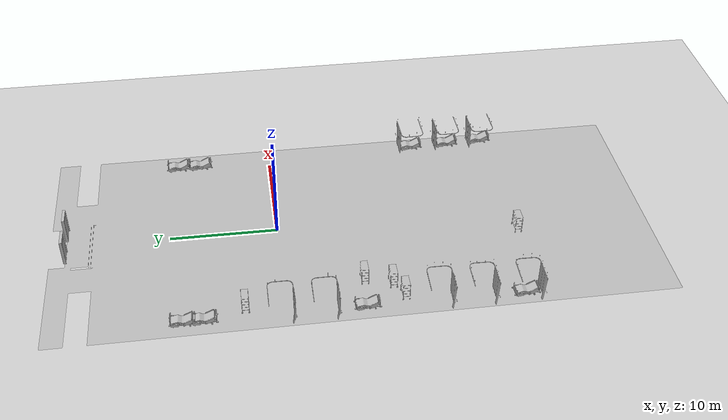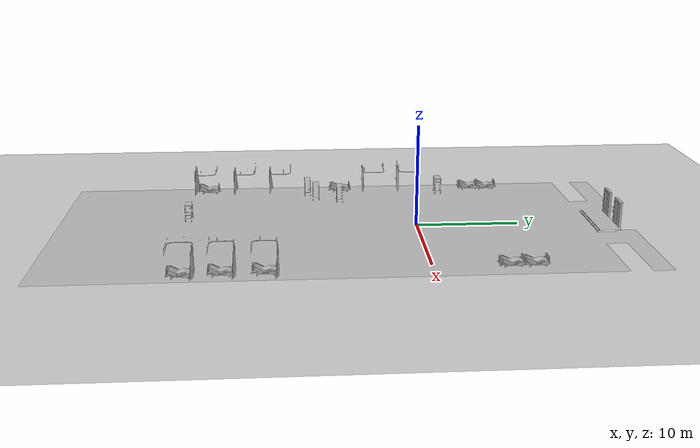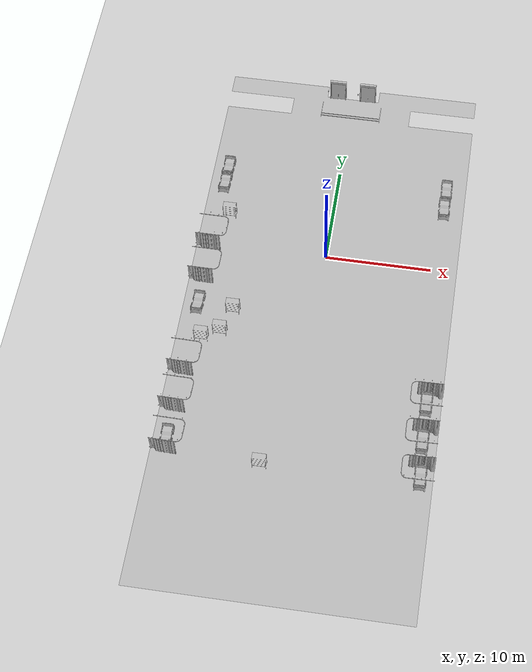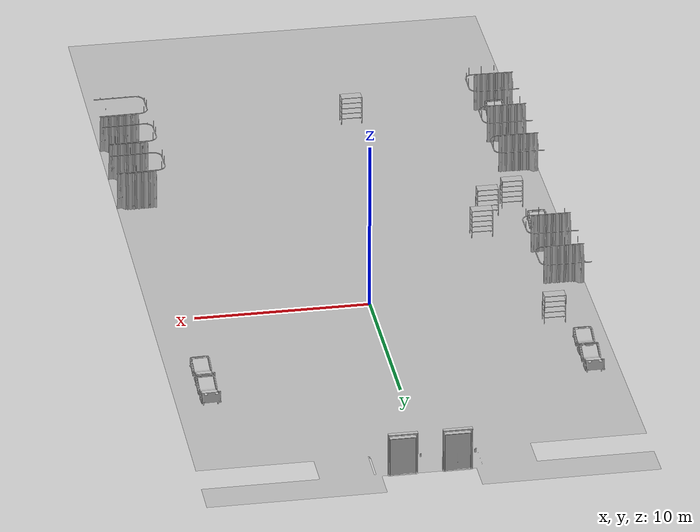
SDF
<sdf version="1.7">
 <world name="world">
  <gravity>0 0 -9.8</gravity>
  <physics name="default_physics" default="0" type="ode">
   <max_step_size>0.002</max_step_size>
   <real_time_factor>1</real_time_factor>
   <real_time_update_rate>500</real_time_update_rate>
  </physics>
  <scene><ambient>0.6 0.6 0.6 1</ambient><background>0.4 0.4 0.4 1</background><shadows>0</shadows></scene>
  <light name="sun" type="directional">
   <pose>0 0 10 0 -0 0</pose>
   <diffuse>0.8 0.8 0.8 1</diffuse>
   <specular>0.2 0.2 0.2 1</specular>
   <attenuation>
    <range>1000</range>
    <constant>0.9</constant>
    <linear>0.01</linear>
    <quadratic>0.001</quadratic>
   </attenuation>
   <direction>-0.5 0.1 -0.9</direction>
   <spot><inner_angle>0</inner_angle><outer_angle>0</outer_angle><falloff>0</falloff></spot>
  </light>
  <model name="ground_plane">
   <static>1</static>
   <link name="link">
    <collision name="collision">
     <geometry><plane><normal>0 0 1</normal><size>100 100</size></plane></geometry>
     <surface><friction><ode><mu>100</mu><mu2>50</mu2></ode></friction></surface>
    </collision>
    <visual name="visual">
     <cast_shadows>0</cast_shadows>
     <geometry><plane><normal>0 0 1</normal><size>100 100</size></plane></geometry>
     <material>
      <script><uri>file://media/materials/scripts/gazebo.material</uri><name>Gazebo/Grey</name></script>
     </material>
    </visual>
   </link>
   <pose>0 0 -0.1 0 -0 0</pose>
  </model>
  <model name="aws_robomaker_hospital_floor_01_floor_1">
   <frame name="aws_robomaker_hospital_floor_01_floor::__model__" attached_to="aws_robomaker_hospital_floor_01_floor::link">
    <pose relative_to="__model__">-0.001425 -0.014447 0 0 -0 0</pose>
   </frame>
   <link name="aws_robomaker_hospital_floor_01_floor::link">
    <visual name="visual">
     <geometry>
      <mesh>
       <uri>model://aws_robomaker_hospital_floor_01_floor/meshes/aws_robomaker_hospital_floor_01_floor_visual.dae</uri>
      </mesh>
     </geometry>
    </visual>
    <collision name="collision">
     <geometry>
      <mesh>
       <uri>model://aws_robomaker_hospital_floor_01_floor/meshes/aws_robomaker_hospital_floor_01_floor_collision.dae</uri>
      </mesh>
     </geometry>
     <surface><friction><ode><mu>100</mu><mu2>50</mu2></ode></friction></surface>
    </collision>
    <pose relative_to="aws_robomaker_hospital_floor_01_floor::__model__">0 0 0 0 -0 0</pose>
   </link>
   <static>1</static>
  </model>
  <model name="aws_robomaker_hospital_elevator_01_portal_1">
   <frame name="aws_robomaker_hospital_elevator_01_portal::__model__" attached_to="aws_robomaker_hospital_elevator_01_portal::link">
    <pose relative_to="__model__">-1.50654 19.4813 0.19 0 -0 0</pose>
   </frame>
   <link name="aws_robomaker_hospital_elevator_01_portal::link">
    <visual name="visual">
     <geometry>
      <mesh>
       <uri>model://aws_robomaker_hospital_elevator_01_portal/meshes/aws_robomaker_hospital_elevator_01_portal_visual.dae</uri>
      </mesh>
     </geometry>
    </visual>
    <collision name="collision">
     <geometry>
      <mesh>
       <uri>model://aws_robomaker_hospital_elevator_01_portal/meshes/aws_robomaker_hospital_elevator_01_portal_collision.dae</uri>
      </mesh>
     </geometry>
    </collision>
    <pose relative_to="aws_robomaker_hospital_elevator_01_portal::__model__">0 0 0 0 -0 0</pose>
   </link>
   <static>1</static>
  </model>
  <model name="aws_robomaker_hospital_elevator_01_portal_2">
   <frame name="aws_robomaker_hospital_elevator_01_portal::__model__" attached_to="aws_robomaker_hospital_elevator_01_portal::link">
    <pose relative_to="__model__">1.51134 19.487 0.19 0 -0 0</pose>
   </frame>
   <link name="aws_robomaker_hospital_elevator_01_portal::link">
    <visual name="visual">
     <geometry>
      <mesh>
       <uri>model://aws_robomaker_hospital_elevator_01_portal/meshes/aws_robomaker_hospital_elevator_01_portal_visual.dae</uri>
      </mesh>
     </geometry>
    </visual>
    <collision name="collision">
     <geometry>
      <mesh>
       <uri>model://aws_robomaker_hospital_elevator_01_portal/meshes/aws_robomaker_hospital_elevator_01_portal_collision.dae</uri>
      </mesh>
     </geometry>
    </collision>
    <pose relative_to="aws_robomaker_hospital_elevator_01_portal::__model__">0 0 0 0 -0 0</pose>
   </link>
   <static>1</static>
  </model>
  <model name="aws_robomaker_hospital_elevator_01_door_1">
   <frame name="aws_robomaker_hospital_elevator_01_door::__model__" attached_to="aws_robomaker_hospital_elevator_01_door::link">
    <pose relative_to="__model__">-1.51 19.35 0.19 0 -0 0</pose>
   </frame>
   <link name="aws_robomaker_hospital_elevator_01_door::link">
    <visual name="visual">
     <geometry>
      <mesh>
       <uri>model://aws_robomaker_hospital_elevator_01_door/meshes/aws_robomaker_hospital_elevator_01_door_visual.dae</uri>
      </mesh>
     </geometry>
    </visual>
    <collision name="collision">
     <geometry>
      <mesh>
       <uri>model://aws_robomaker_hospital_elevator_01_door/meshes/aws_robomaker_hospital_elevator_01_door_collision.dae</uri>
      </mesh>
     </geometry>
    </collision>
    <pose relative_to="aws_robomaker_hospital_elevator_01_door::__model__">0 0 0 0 -0 0</pose>
   </link>
   <static>1</static>
  </model>
  <model name="aws_robomaker_hospital_elevator_01_door_2">
   <frame name="aws_robomaker_hospital_elevator_01_door::__model__" attached_to="aws_robomaker_hospital_elevator_01_door::link">
    <pose relative_to="__model__">1.52843 19.3627 0.19 0 -0 0</pose>
   </frame>
   <link name="aws_robomaker_hospital_elevator_01_door::link">
    <visual name="visual">
     <geometry>
      <mesh>
       <uri>model://aws_robomaker_hospital_elevator_01_door/meshes/aws_robomaker_hospital_elevator_01_door_visual.dae</uri>
      </mesh>
     </geometry>
    </visual>
    <collision name="collision">
     <geometry>
      <mesh>
       <uri>model://aws_robomaker_hospital_elevator_01_door/meshes/aws_robomaker_hospital_elevator_01_door_collision.dae</uri>
      </mesh>
     </geometry>
    </collision>
    <pose relative_to="aws_robomaker_hospital_elevator_01_door::__model__">0 0 0 0 -0 0</pose>
   </link>
   <static>1</static>
  </model>
  <model name="aws_robomaker_hospital_curtain_half_open_01_1">
   <frame name="aws_robomaker_hospital_curtain_half_open_01::__model__" attached_to="aws_robomaker_hospital_curtain_half_open_01::link">
    <pose relative_to="__model__">-11.0216 -13.8069 0 0 -0 1.55358</pose>
   </frame>
   <link name="aws_robomaker_hospital_curtain_half_open_01::link">
    <visual name="visual">
     <geometry>
      <mesh>
       <uri>model://aws_robomaker_hospital_curtain_half_open_01/meshes/aws_robomaker_hospital_curtain_half_open_01_visual.dae</uri>
      </mesh>
     </geometry>
    </visual>
    <collision name="collision">
     <geometry>
      <mesh>
       <uri>model://aws_robomaker_hospital_curtain_half_open_01/meshes/aws_robomaker_hospital_curtain_half_open_01_collision.dae</uri>
      </mesh>
     </geometry>
    </collision>
    <pose relative_to="aws_robomaker_hospital_curtain_half_open_01::__model__">0 0 0 0 -0 0</pose>
   </link>
   <static>1</static>
  </model>
  <model name="aws_robomaker_hospital_curtain_half_open_01_2">
   <frame name="aws_robomaker_hospital_curtain_half_open_01::__model__" attached_to="aws_robomaker_hospital_curtain_half_open_01::link">
    <pose relative_to="__model__">11.1417 -21.4039 0 0 0 -1.55117</pose>
   </frame>
   <link name="aws_robomaker_hospital_curtain_half_open_01::link">
    <visual name="visual">
     <geometry>
      <mesh>
       <uri>model://aws_robomaker_hospital_curtain_half_open_01/meshes/aws_robomaker_hospital_curtain_half_open_01_visual.dae</uri>
      </mesh>
     </geometry>
    </visual>
    <collision name="collision">
     <geometry>
      <mesh>
       <uri>model://aws_robomaker_hospital_curtain_half_open_01/meshes/aws_robomaker_hospital_curtain_half_open_01_collision.dae</uri>
      </mesh>
     </geometry>
    </collision>
    <pose relative_to="aws_robomaker_hospital_curtain_half_open_01::__model__">0 0 0 0 -0 0</pose>
   </link>
   <static>1</static>
  </model>
  <model name="aws_robomaker_hospital_curtain_half_open_01_3">
   <frame name="aws_robomaker_hospital_curtain_half_open_01::__model__" attached_to="aws_robomaker_hospital_curtain_half_open_01::link">
    <pose relative_to="__model__">11.1068 -17.8472 0 0 0 -1.55117</pose>
   </frame>
   <link name="aws_robomaker_hospital_curtain_half_open_01::link">
    <visual name="visual">
     <geometry>
      <mesh>
       <uri>model://aws_robomaker_hospital_curtain_half_open_01/meshes/aws_robomaker_hospital_curtain_half_open_01_visual.dae</uri>
      </mesh>
     </geometry>
    </visual>
    <collision name="collision">
     <geometry>
      <mesh>
       <uri>model://aws_robomaker_hospital_curtain_half_open_01/meshes/aws_robomaker_hospital_curtain_half_open_01_collision.dae</uri>
      </mesh>
     </geometry>
    </collision>
    <pose relative_to="aws_robomaker_hospital_curtain_half_open_01::__model__">0 0 0 0 -0 0</pose>
   </link>
   <static>1</static>
  </model>
  <model name="aws_robomaker_hospital_curtain_half_open_01_4">
   <frame name="aws_robomaker_hospital_curtain_half_open_01::__model__" attached_to="aws_robomaker_hospital_curtain_half_open_01::link">
    <pose relative_to="__model__">11.1374 -14.1551 0 0 0 -1.55117</pose>
   </frame>
   <link name="aws_robomaker_hospital_curtain_half_open_01::link">
    <visual name="visual">
     <geometry>
      <mesh>
       <uri>model://aws_robomaker_hospital_curtain_half_open_01/meshes/aws_robomaker_hospital_curtain_half_open_01_visual.dae</uri>
      </mesh>
     </geometry>
    </visual>
    <collision name="collision">
     <geometry>
      <mesh>
       <uri>model://aws_robomaker_hospital_curtain_half_open_01/meshes/aws_robomaker_hospital_curtain_half_open_01_collision.dae</uri>
      </mesh>
     </geometry>
    </collision>
    <pose relative_to="aws_robomaker_hospital_curtain_half_open_01::__model__">0 0 0 0 -0 0</pose>
   </link>
   <static>1</static>
  </model>
  <model name="aws_robomaker_hospital_curtain_half_open_01_5">
   <frame name="aws_robomaker_hospital_curtain_half_open_01::__model__" attached_to="aws_robomaker_hospital_curtain_half_open_01::link">
    <pose relative_to="__model__">-11.0332 -17.61 0 0 -0 1.55358</pose>
   </frame>
   <link name="aws_robomaker_hospital_curtain_half_open_01::link">
    <visual name="visual">
     <geometry>
      <mesh>
       <uri>model://aws_robomaker_hospital_curtain_half_open_01/meshes/aws_robomaker_hospital_curtain_half_open_01_visual.dae</uri>
      </mesh>
     </geometry>
    </visual>
    <collision name="collision">
     <geometry>
      <mesh>
       <uri>model://aws_robomaker_hospital_curtain_half_open_01/meshes/aws_robomaker_hospital_curtain_half_open_01_collision.dae</uri>
      </mesh>
     </geometry>
    </collision>
    <pose relative_to="aws_robomaker_hospital_curtain_half_open_01::__model__">0 0 0 0 -0 0</pose>
   </link>
   <static>1</static>
  </model>
  <model name="aws_robomaker_hospital_curtain_half_open_01_6">
   <frame name="aws_robomaker_hospital_curtain_half_open_01::__model__" attached_to="aws_robomaker_hospital_curtain_half_open_01::link">
    <pose relative_to="__model__">-11.0086 -21.7566 0 0 -0 1.55358</pose>
   </frame>
   <link name="aws_robomaker_hospital_curtain_half_open_01::link">
    <visual name="visual">
     <geometry>
      <mesh>
       <uri>model://aws_robomaker_hospital_curtain_half_open_01/meshes/aws_robomaker_hospital_curtain_half_open_01_visual.dae</uri>
      </mesh>
     </geometry>
    </visual>
    <collision name="collision">
     <geometry>
      <mesh>
       <uri>model://aws_robomaker_hospital_curtain_half_open_01/meshes/aws_robomaker_hospital_curtain_half_open_01_collision.dae</uri>
      </mesh>
     </geometry>
    </collision>
    <pose relative_to="aws_robomaker_hospital_curtain_half_open_01::__model__">0 0 0 0 -0 0</pose>
   </link>
   <static>1</static>
  </model>
  <model name="CGMClassic_1">
   <frame name="CGMClassic::__model__" attached_to="CGMClassic::body">
    <pose relative_to="__model__">11.1777 -18.4129 0 0 0 -3.13719</pose>
   </frame>
   <static>1</static>
   <link name="CGMClassic::body">
    <pose relative_to="CGMClassic::__model__">0 0 0 0 -0 0</pose>
    <visual name="visual">
     <geometry>
      <mesh><uri>model://CGMClassic/meshes/CGMClassic.obj</uri><scale>0.01 0.01 0.01</scale></mesh>
     </geometry>
    </visual>
    <collision name="collision">
     <geometry>
      <mesh><uri>model://CGMClassic/meshes/CGMClassic.obj</uri><scale>0.01 0.01 0.01</scale></mesh>
     </geometry>
    </collision>
   </link>
  </model>
  <model name="CGMClassic_2">
   <frame name="CGMClassic::__model__" attached_to="CGMClassic::body">
    <pose relative_to="__model__">11.1179 -14.6493 0 0 0 -3.13599</pose>
   </frame>
   <static>1</static>
   <link name="CGMClassic::body">
    <pose relative_to="CGMClassic::__model__">0 0 0 0 -0 0</pose>
    <visual name="visual">
     <geometry>
      <mesh><uri>model://CGMClassic/meshes/CGMClassic.obj</uri><scale>0.01 0.01 0.01</scale></mesh>
     </geometry>
    </visual>
    <collision name="collision">
     <geometry>
      <mesh><uri>model://CGMClassic/meshes/CGMClassic.obj</uri><scale>0.01 0.01 0.01</scale></mesh>
     </geometry>
    </collision>
   </link>
  </model>
  <model name="CGMClassic_3">
   <frame name="CGMClassic::__model__" attached_to="CGMClassic::body">
    <pose relative_to="__model__">-11.2304 -21.1134 0 0 0 -3.11834</pose>
   </frame>
   <static>1</static>
   <link name="CGMClassic::body">
    <pose relative_to="CGMClassic::__model__">0 0 0 0 -0 0</pose>
    <visual name="visual">
     <geometry>
      <mesh><uri>model://CGMClassic/meshes/CGMClassic.obj</uri><scale>0.01 0.01 0.01</scale></mesh>
     </geometry>
    </visual>
    <collision name="collision">
     <geometry>
      <mesh><uri>model://CGMClassic/meshes/CGMClassic.obj</uri><scale>0.01 0.01 0.01</scale></mesh>
     </geometry>
    </collision>
   </link>
  </model>
  <model name="CGMClassic_4">
   <frame name="CGMClassic::__model__" attached_to="CGMClassic::body">
    <pose relative_to="__model__">-11.0878 -7.00992 0 0 -0 3.1351</pose>
   </frame>
   <static>1</static>
   <link name="CGMClassic::body">
    <pose relative_to="CGMClassic::__model__">0 0 0 0 -0 0</pose>
    <visual name="visual">
     <geometry>
      <mesh><uri>model://CGMClassic/meshes/CGMClassic.obj</uri><scale>0.01 0.01 0.01</scale></mesh>
     </geometry>
    </visual>
    <collision name="collision">
     <geometry>
      <mesh><uri>model://CGMClassic/meshes/CGMClassic.obj</uri><scale>0.01 0.01 0.01</scale></mesh>
     </geometry>
    </collision>
   </link>
  </model>
  <model name="CGMClassic_5">
   <frame name="CGMClassic::__model__" attached_to="CGMClassic::body">
    <pose relative_to="__model__">-11.0106 8.9505 -0.008203 -0.035019 -0.000392 3.13388</pose>
   </frame>
   <static>1</static>
   <link name="CGMClassic::body">
    <pose relative_to="CGMClassic::__model__">0 0 0 0 -0 0</pose>
    <visual name="visual">
     <geometry>
      <mesh><uri>model://CGMClassic/meshes/CGMClassic.obj</uri><scale>0.01 0.01 0.01</scale></mesh>
     </geometry>
    </visual>
    <collision name="collision">
     <geometry>
      <mesh><uri>model://CGMClassic/meshes/CGMClassic.obj</uri><scale>0.01 0.01 0.01</scale></mesh>
     </geometry>
    </collision>
   </link>
  </model>
  <model name="CGMClassic_6">
   <frame name="CGMClassic::__model__" attached_to="CGMClassic::body">
    <pose relative_to="__model__">-11.025 7.10335 0 -0.035021 1.8e-05 -3.13762</pose>
   </frame>
   <static>1</static>
   <link name="CGMClassic::body">
    <pose relative_to="CGMClassic::__model__">0 0 0 0 -0 0</pose>
    <visual name="visual">
     <geometry>
      <mesh><uri>model://CGMClassic/meshes/CGMClassic.obj</uri><scale>0.01 0.01 0.01</scale></mesh>
     </geometry>
    </visual>
    <collision name="collision">
     <geometry>
      <mesh><uri>model://CGMClassic/meshes/CGMClassic.obj</uri><scale>0.01 0.01 0.01</scale></mesh>
     </geometry>
    </collision>
   </link>
  </model>
  <model name="aws_robomaker_hospital_curtain_half_open_01_7">
   <frame name="aws_robomaker_hospital_curtain_half_open_01::__model__" attached_to="aws_robomaker_hospital_curtain_half_open_01::link">
    <pose relative_to="__model__">-11.0426 0.066126 0 0 -0 1.56614</pose>
   </frame>
   <link name="aws_robomaker_hospital_curtain_half_open_01::link">
    <visual name="visual">
     <geometry>
      <mesh>
       <uri>model://aws_robomaker_hospital_curtain_half_open_01/meshes/aws_robomaker_hospital_curtain_half_open_01_visual.dae</uri>
      </mesh>
     </geometry>
    </visual>
    <collision name="collision">
     <geometry>
      <mesh>
       <uri>model://aws_robomaker_hospital_curtain_half_open_01/meshes/aws_robomaker_hospital_curtain_half_open_01_collision.dae</uri>
      </mesh>
     </geometry>
    </collision>
    <pose relative_to="aws_robomaker_hospital_curtain_half_open_01::__model__">0 0 0 0 -0 0</pose>
   </link>
   <static>1</static>
  </model>
  <model name="aws_robomaker_hospital_curtain_half_open_01_8">
   <frame name="aws_robomaker_hospital_curtain_half_open_01::__model__" attached_to="aws_robomaker_hospital_curtain_half_open_01::link">
    <pose relative_to="__model__">-11.0309 -3.75145 0 0 -0 1.56614</pose>
   </frame>
   <link name="aws_robomaker_hospital_curtain_half_open_01::link">
    <visual name="visual">
     <geometry>
      <mesh>
       <uri>model://aws_robomaker_hospital_curtain_half_open_01/meshes/aws_robomaker_hospital_curtain_half_open_01_visual.dae</uri>
      </mesh>
     </geometry>
    </visual>
    <collision name="collision">
     <geometry>
      <mesh>
       <uri>model://aws_robomaker_hospital_curtain_half_open_01/meshes/aws_robomaker_hospital_curtain_half_open_01_collision.dae</uri>
      </mesh>
     </geometry>
    </collision>
    <pose relative_to="aws_robomaker_hospital_curtain_half_open_01::__model__">0 0 0 0 -0 0</pose>
   </link>
   <static>1</static>
  </model>
  <model name="StorageRack_2">
   <frame name="StorageRack::__model__" attached_to="StorageRack::link">
    <pose relative_to="__model__">-2.69866 -22.4178 -8e-06 0 4e-06 0</pose>
   </frame>
   <link name="StorageRack::link">
    <pose relative_to="StorageRack::__model__">0 0 0 0 -0 0</pose>
    <visual name="visual">
     <geometry><mesh><uri>model://StorageRack/meshes/StorageRack.obj</uri></mesh></geometry>
    </visual>
    <collision name="collision">
     <geometry><mesh><uri>model://StorageRack/meshes/StorageRack.obj</uri></mesh></geometry>
    </collision>
   </link>
   <static>1</static>
  </model>
  <model name="CGMClassic_7">
   <frame name="CGMClassic::__model__" attached_to="CGMClassic::body">
    <pose relative_to="__model__">10.6166 9.06291 -0.008203 -0.03501 0.000885 -3.11285</pose>
   </frame>
   <static>1</static>
   <link name="CGMClassic::body">
    <pose relative_to="CGMClassic::__model__">0 0 0 0 -0 0</pose>
    <visual name="visual">
     <geometry>
      <mesh><uri>model://CGMClassic/meshes/CGMClassic.obj</uri><scale>0.01 0.01 0.01</scale></mesh>
     </geometry>
    </visual>
    <collision name="collision">
     <geometry>
      <mesh><uri>model://CGMClassic/meshes/CGMClassic.obj</uri><scale>0.01 0.01 0.01</scale></mesh>
     </geometry>
    </collision>
   </link>
  </model>
  <model name="CGMClassic_8">
   <frame name="CGMClassic::__model__" attached_to="CGMClassic::body">
    <pose relative_to="__model__">10.6006 6.90956 -0.008203 -0.035003 0.001133 -3.10576</pose>
   </frame>
   <static>1</static>
   <link name="CGMClassic::body">
    <pose relative_to="CGMClassic::__model__">0 0 0 0 -0 0</pose>
    <visual name="visual">
     <geometry>
      <mesh><uri>model://CGMClassic/meshes/CGMClassic.obj</uri><scale>0.01 0.01 0.01</scale></mesh>
     </geometry>
    </visual>
    <collision name="collision">
     <geometry>
      <mesh><uri>model://CGMClassic/meshes/CGMClassic.obj</uri><scale>0.01 0.01 0.01</scale></mesh>
     </geometry>
    </collision>
   </link>
  </model>
  <model name="CGMClassic_9">
   <frame name="CGMClassic::__model__" attached_to="CGMClassic::body">
    <pose relative_to="__model__">11.3613 -21.8867 0 0 0 -3.12292</pose>
   </frame>
   <static>1</static>
   <link name="CGMClassic::body">
    <pose relative_to="CGMClassic::__model__">0 0 0 0 -0 0</pose>
    <visual name="visual">
     <geometry>
      <mesh><uri>model://CGMClassic/meshes/CGMClassic.obj</uri><scale>0.01 0.01 0.01</scale></mesh>
     </geometry>
    </visual>
    <collision name="collision">
     <geometry>
      <mesh><uri>model://CGMClassic/meshes/CGMClassic.obj</uri><scale>0.01 0.01 0.01</scale></mesh>
     </geometry>
    </collision>
   </link>
  </model>
  <model name="StorageRack_3">
   <frame name="StorageRack::__model__" attached_to="StorageRack::link">
    <pose relative_to="__model__">-10.1178 -10.4694 -0 0 -0 0</pose>
   </frame>
   <link name="StorageRack::link">
    <pose relative_to="StorageRack::__model__">0 0 0 0 -0 0</pose>
    <visual name="visual">
     <geometry><mesh><uri>model://StorageRack/meshes/StorageRack.obj</uri></mesh></geometry>
    </visual>
    <collision name="collision">
     <geometry><mesh><uri>model://StorageRack/meshes/StorageRack.obj</uri></mesh></geometry>
    </collision>
   </link>
   <static>1</static>
  </model>
  <model name="StorageRack_4">
   <frame name="StorageRack::__model__" attached_to="StorageRack::link">
    <pose relative_to="__model__">-9.91557 3.5644 -9e-06 1e-06 1e-06 -0.000273</pose>
   </frame>
   <link name="StorageRack::link">
    <pose relative_to="StorageRack::__model__">0 0 0 0 -0 0</pose>
    <visual name="visual">
     <geometry><mesh><uri>model://StorageRack/meshes/StorageRack.obj</uri></mesh></geometry>
    </visual>
    <collision name="collision">
     <geometry><mesh><uri>model://StorageRack/meshes/StorageRack.obj</uri></mesh></geometry>
    </collision>
   </link>
   <static>1</static>
  </model>
  <magnetic_field>6e-06 2.3e-05 -4.2e-05</magnetic_field>
  <atmosphere type="adiabatic"/>
  <audio><device>default</device></audio>
  <spherical_coordinates>
   <surface_model>EARTH_WGS84</surface_model>
   <latitude_deg>0</latitude_deg>
   <longitude_deg>0</longitude_deg>
   <elevation>0</elevation>
   <heading_deg>0</heading_deg>
  </spherical_coordinates>
  <model name="StorageRack_4_clone">
   <frame name="StorageRack::__model__" attached_to="StorageRack::link">
    <pose relative_to="__model__">-9.91557 3.5644 -9e-06 1e-06 1e-06 -0.000273</pose>
   </frame>
   <link name="StorageRack::link">
    <pose relative_to="StorageRack::__model__">0 0 0 0 -0 0</pose>
    <visual name="visual">
     <geometry><mesh><uri>model://StorageRack/meshes/StorageRack.obj</uri></mesh></geometry>
    </visual>
    <collision name="collision">
     <geometry><mesh><uri>model://StorageRack/meshes/StorageRack.obj</uri></mesh></geometry>
    </collision>
   </link>
   <static>1</static>
   <pose>1.391 -13.1838 0 0 -0 0</pose>
  </model>
  <model name="StorageRack_4_clone_0">
   <frame name="StorageRack::__model__" attached_to="StorageRack::link">
    <pose relative_to="__model__">-9.91557 3.5644 -9e-06 1e-06 1e-06 -0.000273</pose>
   </frame>
   <link name="StorageRack::link">
    <pose relative_to="StorageRack::__model__">0 0 0 0 -0 0</pose>
    <visual name="visual">
     <geometry><mesh><uri>model://StorageRack/meshes/StorageRack.obj</uri></mesh></geometry>
    </visual>
    <collision name="collision">
     <geometry><mesh><uri>model://StorageRack/meshes/StorageRack.obj</uri></mesh></geometry>
    </collision>
   </link>
   <static>1</static>
   <pose>2.18331 -10.7281 0 0 -0 0</pose>
  </model>
 </world>
</sdf>
